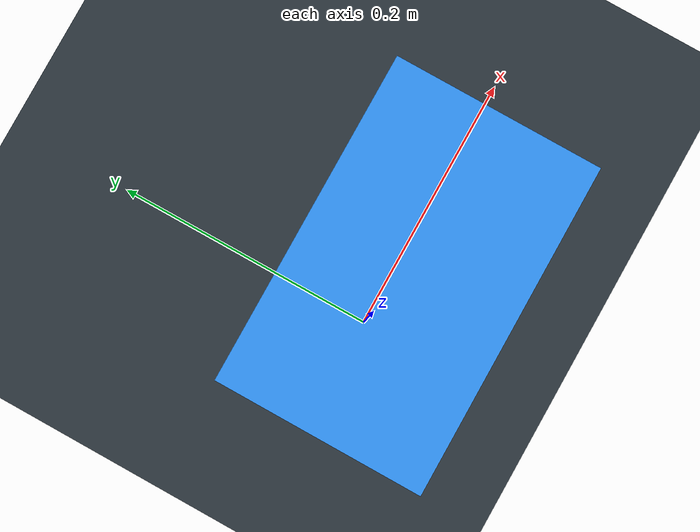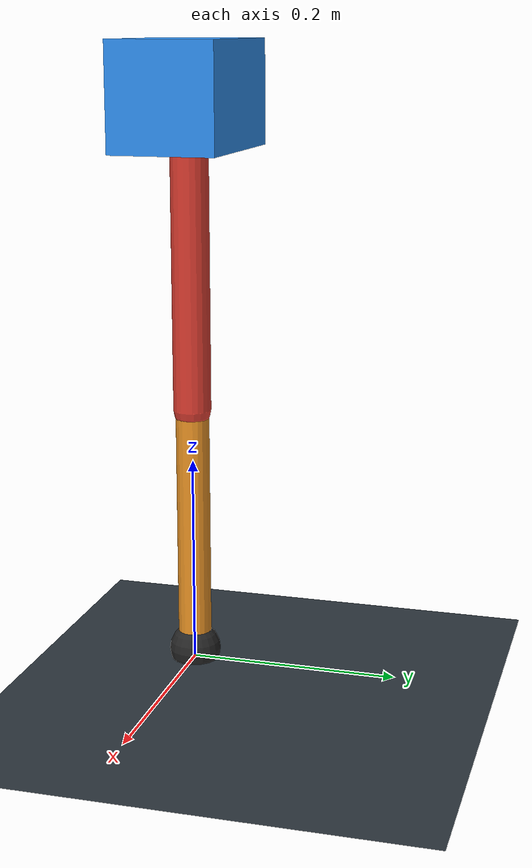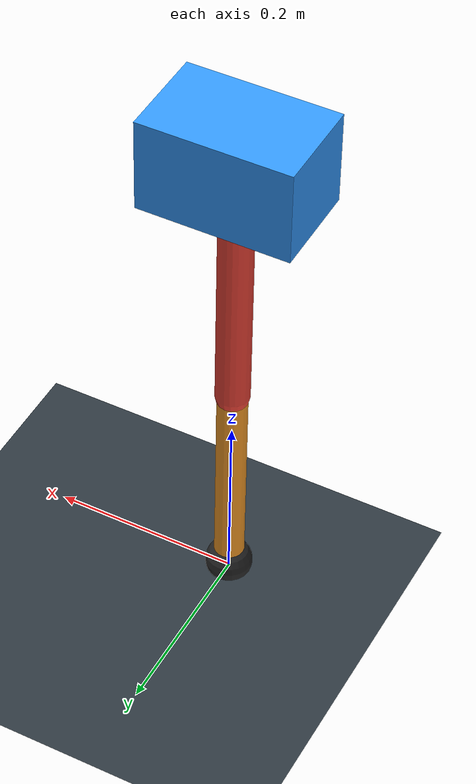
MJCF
<mujoco model="single_axis_two_bar">
  <compiler angle="radian" inertiafromgeom="true"/>
  <option timestep="0.001" integrator="implicitfast" gravity="0 0 -9.81"/>
  <default>
    <joint damping="0.08"/>
    <geom friction="1.2 0.01 0.0001" condim="3"/>
  </default>
  <worldbody>
    <geom name="floor" type="plane" size="5 5 0.1" rgba="0.18 0.22 0.25 1"/>
    <body name="carriage" pos="0 0 0.5474964725484436">
      <joint name="pole_slide" type="slide" axis="0 0 1"/>
      <geom name="payload" type="box" size="0.08 0.05 0.05" mass="2.7590821789966364" rgba="0.2 0.6 1 1"/>
      <body name="thigh" pos="0 0 0">
        <joint name="hip" type="hinge" axis="0 1 0"/>
        <geom name="thigh_link" type="capsule" fromto="0 0 0 0 0 -0.29674082627017384" size="0.018" mass="0.21143175980156717" rgba="0.9 0.25 0.2 1"/>
        <body name="shank" pos="0 0 -0.29674082627017384">
          <joint name="knee" type="hinge" axis="0 1 0"/>
          <geom name="shank_link" type="capsule" fromto="0 0 0 0 0 -0.2419153309962628" size="0.016" mass="0.17236786996390302" rgba="0.95 0.6 0.15 1"/>
          <geom name="foot" type="sphere" pos="0 0 -0.2419153309962628" size="0.025" mass="0.03" rgba="0.15 0.15 0.15 1"/>
          <site name="toe" pos="0 0 -0.2419153309962628" size="0.008"/>
        </body>
      </body>
    </body>
  </worldbody>
  <actuator>
    <motor name="hip_motor" joint="hip" ctrlrange="-27.25537410421197 27.25537410421197"/>
    <motor name="knee_motor" joint="knee" ctrlrange="-60.4834422479882 60.4834422479882"/>
  </actuator>
</mujoco>
